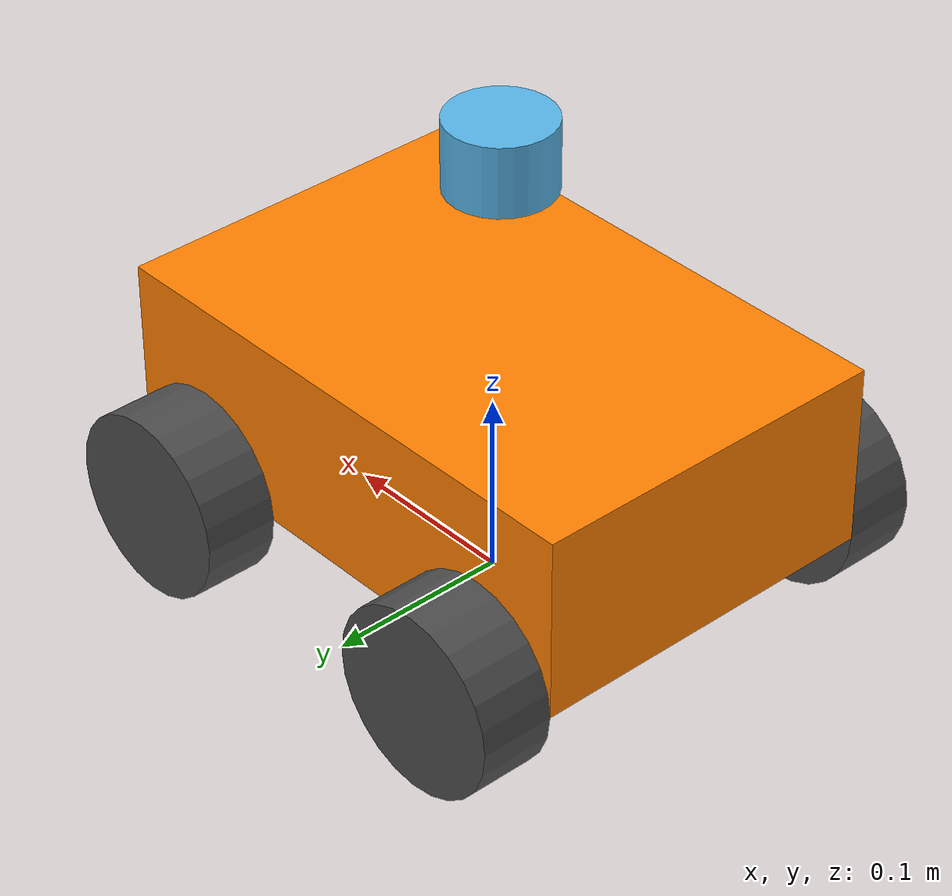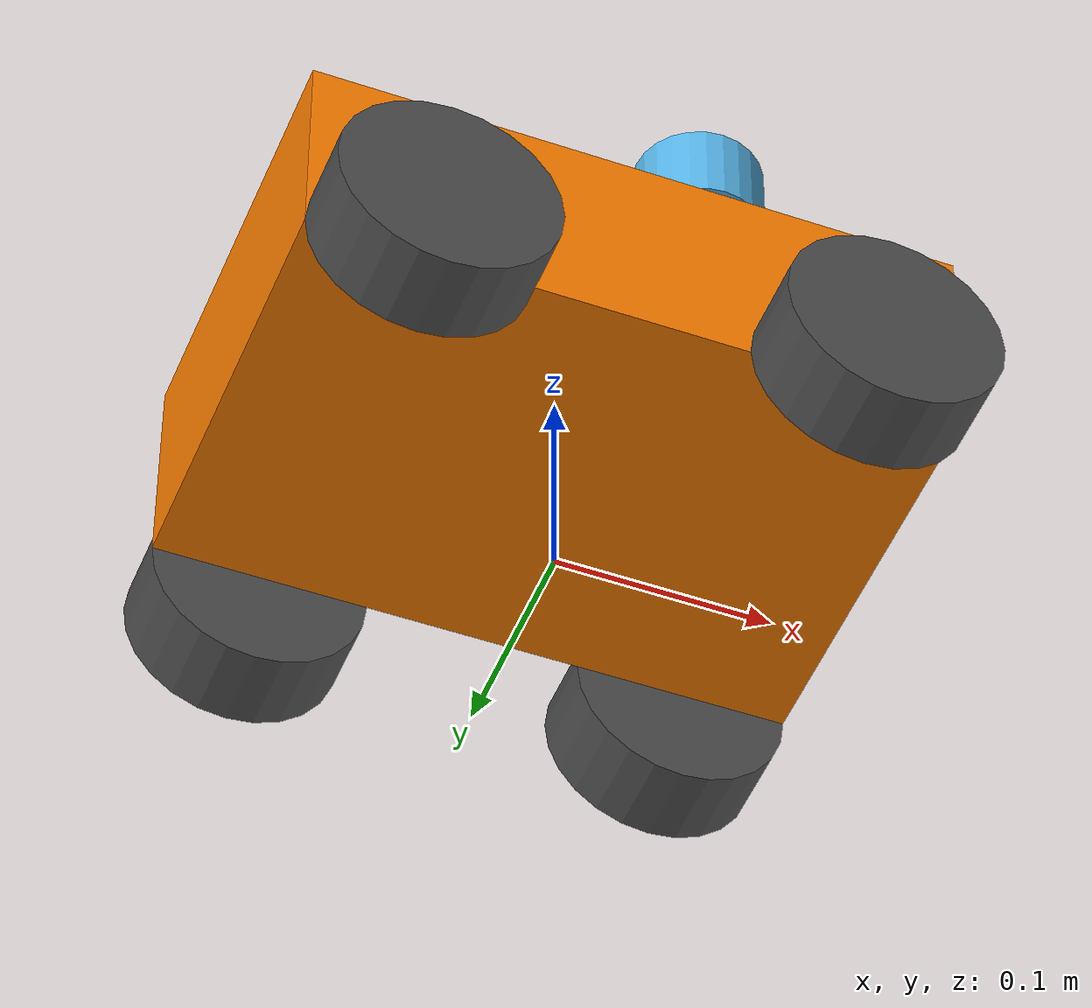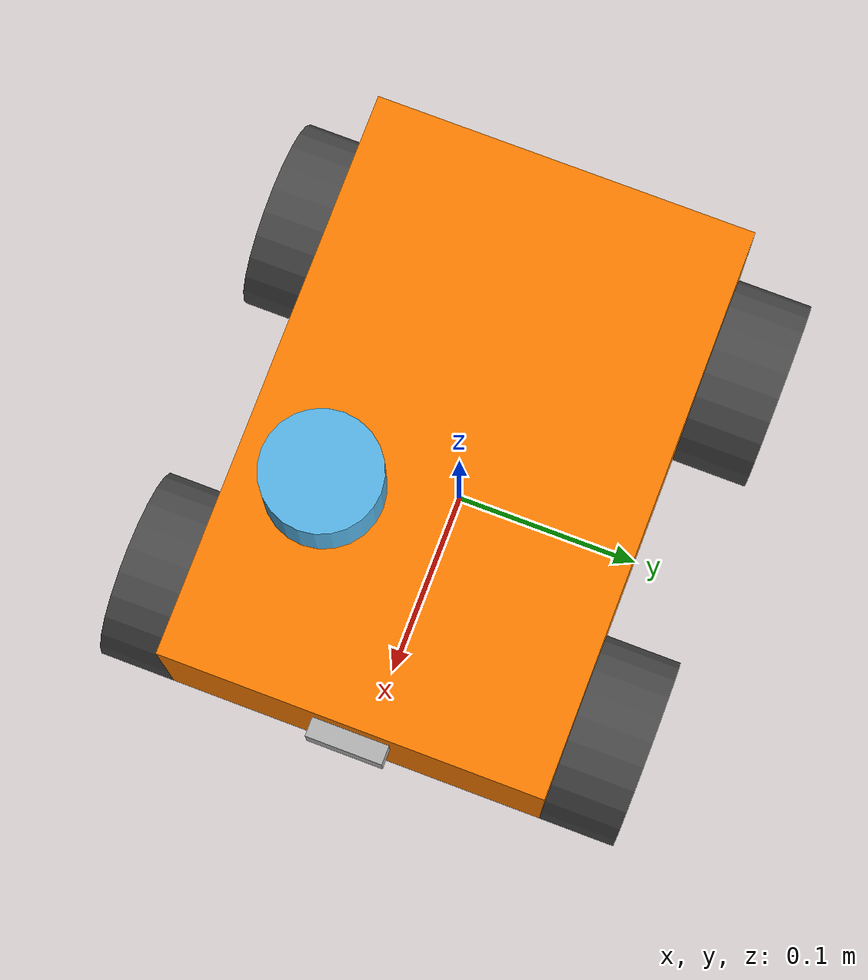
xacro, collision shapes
<?xml version="1.0"?>
<robot name="drobot" xmlns:xacro="http://www.ros.org/wiki/xacro">

  <!-- PARAMETERS           -->

  <!-- 로봇 크기 (미터 단위) - Onshape에서 측정 후 수정하세요 -->
  <xacro:property name="body_length" value="0.30"/>
  <xacro:property name="body_width" value="0.20"/>
  <xacro:property name="body_height" value="0.10"/>
  <xacro:property name="body_mass" value="1.5"/>

  <!-- 바퀴 파라미터 -->
  <xacro:property name="wheel_radius" value="0.05"/>
  <xacro:property name="wheel_width" value="0.04"/>
  <xacro:property name="wheel_mass" value="0.2"/>
  <xacro:property name="wheel_base" value="0.24"/>  <!-- 좌우 바퀴 간 거리 -->
  <xacro:property name="wheel_separation_length" value="0.20"/>  <!-- 앞뒤 바퀴 간 거리 -->

  <!-- 프로펠러 파라미터 -->
  <xacro:property name="prop_radius" value="0.08"/>
  <xacro:property name="prop_height" value="0.01"/>
  <xacro:property name="prop_mass" value="0.05"/>
  <xacro:property name="arm_length" value="0.15"/>  <!-- 중심에서 프로펠러까지 -->

  <!-- MATERIALS            -->

  <material name="blue">
    <color rgba="0.2 0.4 0.8 1.0"/>
  </material>
  <material name="black">
    <color rgba="0.1 0.1 0.1 1.0"/>
  </material>
  <material name="orange">
    <color rgba="1.0 0.5 0.0 1.0"/>
  </material>
  <material name="gray">
    <color rgba="0.5 0.5 0.5 1.0"/>
  </material>

  <!-- MACROS               -->

  <!-- Inertia 계산 매크로 -->
  <xacro:macro name="box_inertia" params="m x y z">
    <inertia ixx="${m*(y*y+z*z)/12}" ixy="0" ixz="0"
             iyy="${m*(x*x+z*z)/12}" iyz="0"
             izz="${m*(x*x+y*y)/12}"/>
  </xacro:macro>

  <xacro:macro name="cylinder_inertia" params="m r h">
    <inertia ixx="${m*(3*r*r+h*h)/12}" ixy="0" ixz="0"
             iyy="${m*(3*r*r+h*h)/12}" iyz="0"
             izz="${m*r*r/2}"/>
  </xacro:macro>

  <!-- 바퀴 매크로 (visual 제거 - 통째 STL에 포함) -->
  <xacro:macro name="wheel" params="prefix x_offset y_offset">
    <link name="${prefix}_wheel">
      <collision>
        <geometry>
          <cylinder radius="${wheel_radius}" length="${wheel_width}"/>
        </geometry>
        <origin xyz="0 0 0" rpy="${pi/2} 0 0"/>
      </collision>
      <inertial>
        <mass value="${wheel_mass}"/>
        <origin xyz="0 0 0" rpy="${pi/2} 0 0"/>
        <xacro:cylinder_inertia m="${wheel_mass}" r="${wheel_radius}" h="${wheel_width}"/>
      </inertial>
    </link>

    <joint name="${prefix}_wheel_joint" type="continuous">
      <parent link="base_link"/>
      <child link="${prefix}_wheel"/>
      <origin xyz="${x_offset} ${y_offset} 0" rpy="0 0 0"/>
      <axis xyz="0 1 0"/>
      <dynamics damping="0.1" friction="0.1"/>
    </joint>

    <!-- Gazebo 바퀴 마찰 설정 -->
    <gazebo reference="${prefix}_wheel">
      <mu1>1.0</mu1>
      <mu2>1.0</mu2>
      <kp>1000000.0</kp>
      <kd>100.0</kd>
      <material>Gazebo/DarkGrey</material>
    </gazebo>
  </xacro:macro>

  <!-- 프로펠러 매크로 -->
  <xacro:macro name="propeller" params="prefix x_offset y_offset rotation_dir">
    <link name="${prefix}_propeller">
      <visual>
        <geometry>
          <!-- STL 파일로 교체하려면 아래 주석 해제 -->
          <cylinder radius="${prop_radius}" length="${prop_height}"/>
        </geometry>
        <origin xyz="0 0 0" rpy="0 0 0"/>
        <material name="gray"/>
      </visual>
      <collision>
        <geometry>
          <cylinder radius="${prop_radius}" length="${prop_height}"/>
        </geometry>
        <origin xyz="0 0 0" rpy="0 0 0"/>
      </collision>
      <inertial>
        <mass value="${prop_mass}"/>
        <xacro:cylinder_inertia m="${prop_mass}" r="${prop_radius}" h="${prop_height}"/>
      </inertial>
    </link>

    <joint name="${prefix}_propeller_joint" type="continuous">
      <parent link="base_link"/>
      <child link="${prefix}_propeller"/>
      <origin xyz="${x_offset} ${y_offset} ${body_height/2 + 0.02}" rpy="0 0 0"/>
      <axis xyz="0 0 1"/>
      <dynamics damping="0.001"/>
    </joint>

    <gazebo reference="${prefix}_propeller">
      <material>Gazebo/Grey</material>
    </gazebo>
  </xacro:macro>

  <!-- BASE LINK (본체)     -->

  <link name="base_footprint"/>

  <link name="base_link">
    <!-- 통째 STL -->
    <visual name="body_mesh">
      <geometry>
        <mesh filename="package://drobot_description/meshes/drobot_body.stl" scale="0.001 0.001 0.001"/>
      </geometry>
      <!-- STL 원점 보정: 로봇 중심으로 이동 -->
      <origin xyz="-0.18 0.2 -0.05" rpy="1.5708 0 0"/>
      <material name="orange"/>
    </visual>
    <collision>
      <geometry>
        <box size="${body_length} ${body_width} ${body_height}"/>
      </geometry>
      <origin xyz="0 0 ${body_height/2}" rpy="0 0 0"/>
    </collision>
    <inertial>
      <mass value="${body_mass}"/>
      <origin xyz="0 0 ${body_height/2}" rpy="0 0 0"/>
      <xacro:box_inertia m="${body_mass}" x="${body_length}" y="${body_width}" z="${body_height}"/>
    </inertial>
  </link>

  <joint name="base_footprint_joint" type="fixed">
    <parent link="base_footprint"/>
    <child link="base_link"/>
    <origin xyz="0 0 ${wheel_radius}" rpy="0 0 0"/>
  </joint>

  <gazebo reference="base_link">
    <material>Gazebo/Blue</material>
  </gazebo>

  <!-- WHEELS (4바퀴 스키드 스티어) -->

  <!-- 앞바퀴 -->
  <xacro:wheel prefix="front_left"  x_offset="${wheel_separation_length/2}"  y_offset="${wheel_base/2}"/>
  <xacro:wheel prefix="front_right" x_offset="${wheel_separation_length/2}"  y_offset="${-wheel_base/2}"/>

  <!-- 뒷바퀴 -->
  <xacro:wheel prefix="rear_left"   x_offset="${-wheel_separation_length/2}" y_offset="${wheel_base/2}"/>
  <xacro:wheel prefix="rear_right"  x_offset="${-wheel_separation_length/2}" y_offset="${-wheel_base/2}"/>

  <!-- SENSORS              -->

  <!-- IMU (visual 제거 - STL에 포함) -->
  <link name="imu_link">
  </link>

  <joint name="imu_joint" type="fixed">
    <parent link="base_link"/>
    <child link="imu_link"/>
    <origin xyz="0 0 ${body_height + 0.01}" rpy="0 0 0"/>
  </joint>

  <!-- Camera (visual 제거 - STL에 포함) -->
  <link name="camera_link">
    <collision>
      <geometry>
        <box size="0.02 0.04 0.02"/>
      </geometry>
    </collision>
    <inertial>
      <mass value="0.05"/>
      <xacro:box_inertia m="0.05" x="0.02" y="0.04" z="0.02"/>
    </inertial>
  </link>

  <joint name="camera_joint" type="fixed">
    <parent link="base_link"/>
    <child link="camera_link"/>
    <origin xyz="${body_length/2} 0 ${body_height/2 + 0.02}" rpy="0 0 0"/>
  </joint>

  <!-- Camera optical frame (ROS convention: Z forward, X right, Y down) -->
  <link name="camera_optical_frame"/>

  <joint name="camera_optical_joint" type="fixed">
    <parent link="camera_link"/>
    <child link="camera_optical_frame"/>
    <origin xyz="0 0 0" rpy="${-pi/2} 0 ${-pi/2}"/>
  </joint>

  <!-- LiDAR (visual 제거 - STL에 포함) -->
  <link name="lidar_link">
    <collision>
      <geometry>
        <cylinder radius="0.03" length="0.04"/>
      </geometry>
    </collision>
    <inertial>
      <mass value="0.1"/>
      <xacro:cylinder_inertia m="0.1" r="0.03" h="0.04"/>
    </inertial>
  </link>

  <joint name="lidar_joint" type="fixed">
    <parent link="base_link"/>
    <child link="lidar_link"/>
    <!-- LiDAR 위치 보정: 스캔이 앞+오른쪽으로 밀려서 앞+오른쪽으로 이동 -->
    <origin xyz="0.05 -0.05 ${body_height + 0.05}" rpy="0 0 0"/>
  </joint>

  <!-- GAZEBO PLUGINS       -->

  <!-- Skid Steer Drive (4바퀴) -->
  <gazebo>
    <plugin filename="gz-sim-diff-drive-system" name="gz::sim::systems::DiffDrive">
      <!-- 왼쪽 바퀴들 -->
      <left_joint>front_left_wheel_joint</left_joint>
      <left_joint>rear_left_wheel_joint</left_joint>
      <!-- 오른쪽 바퀴들 -->
      <right_joint>front_right_wheel_joint</right_joint>
      <right_joint>rear_right_wheel_joint</right_joint>
      <wheel_separation>${wheel_base}</wheel_separation>
      <wheel_radius>${wheel_radius}</wheel_radius>
      <max_linear_acceleration>1.0</max_linear_acceleration>
      <max_angular_acceleration>2.0</max_angular_acceleration>
      <topic>/cmd_vel</topic>
      <odom_topic>/wheel_odom</odom_topic>
      <frame_id>odom</frame_id>
      <child_frame_id>base_footprint</child_frame_id>
      <odom_publish_frequency>50</odom_publish_frequency>
      <!-- TF는 EKF에서 발행하므로 여기서 비활성화 -->
      <publish_odom_tf>false</publish_odom_tf>
    </plugin>
  </gazebo>

  <!-- World-pose odometry publisher (collision-consistent /odom) -->
  <gazebo>
    <plugin filename="gz-sim-odometry-publisher-system" name="gz::sim::systems::OdometryPublisher">
      <odom_frame>odom</odom_frame>
      <robot_base_frame>base_footprint</robot_base_frame>
      <dimensions>2</dimensions>
      <odom_publish_frequency>50</odom_publish_frequency>
      <odom_topic>/odom</odom_topic>
    </plugin>
  </gazebo>

  <!-- Joint State Publisher -->
  <gazebo>
    <plugin filename="gz-sim-joint-state-publisher-system" name="gz::sim::systems::JointStatePublisher">
      <topic>/joint_states</topic>
      <!-- 4바퀴 조인트 -->
      <joint_name>front_left_wheel_joint</joint_name>
      <joint_name>front_right_wheel_joint</joint_name>
      <joint_name>rear_left_wheel_joint</joint_name>
      <joint_name>rear_right_wheel_joint</joint_name>
    </plugin>
  </gazebo>

  <!-- IMU Sensor -->
  <gazebo reference="imu_link">
    <sensor name="imu_sensor" type="imu">
      <always_on>true</always_on>
      <update_rate>100</update_rate>
      <topic>/imu</topic>
      <gz_frame_id>imu_link</gz_frame_id>
    </sensor>
  </gazebo>

  <!-- LiDAR Sensor -->
  <gazebo reference="lidar_link">
    <sensor name="lidar" type="gpu_lidar">
      <topic>/scan</topic>
      <update_rate>10</update_rate>
      <gz_frame_id>lidar_link</gz_frame_id>
      <lidar>
        <scan>
          <horizontal>
            <samples>360</samples>
            <resolution>1</resolution>
            <min_angle>-3.14159</min_angle>
            <max_angle>3.14159</max_angle>
          </horizontal>
        </scan>
        <range>
          <min>0.35</min>
          <max>12.0</max>
          <resolution>0.01</resolution>
        </range>
      </lidar>
      <visualize>true</visualize>
    </sensor>
  </gazebo>

  <!-- Camera Sensor -->
  <gazebo reference="camera_link">
    <sensor name="camera" type="camera">
      <topic>/camera/image_raw</topic>
      <update_rate>30</update_rate>
      <gz_frame_id>camera_optical_frame</gz_frame_id>
      <camera>
        <horizontal_fov>1.3962634</horizontal_fov>
        <image>
          <width>640</width>
          <height>480</height>
          <format>R8G8B8</format>
        </image>
        <clip>
          <near>0.02</near>
          <far>100</far>
        </clip>
      </camera>
    </sensor>
  </gazebo>

</robot>
